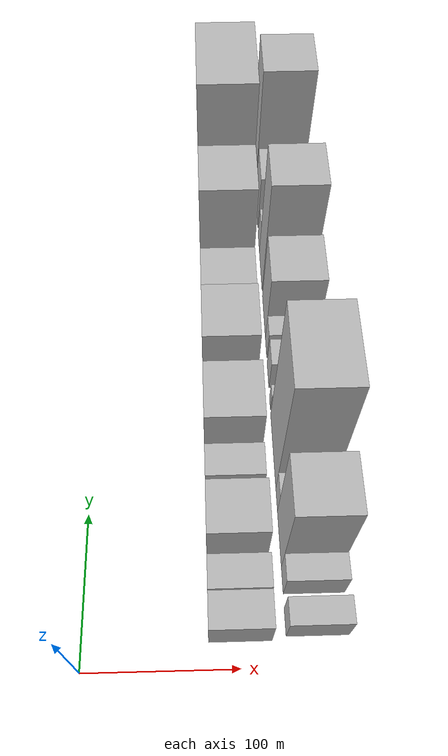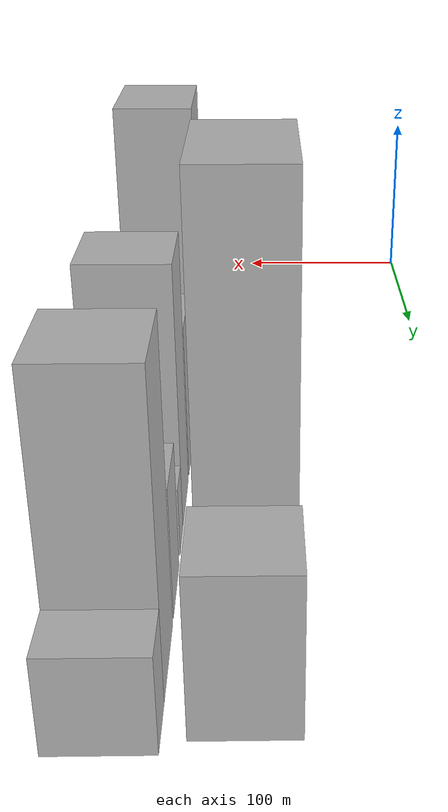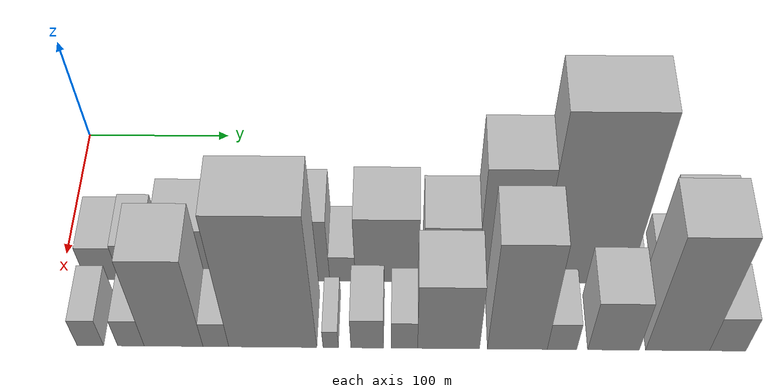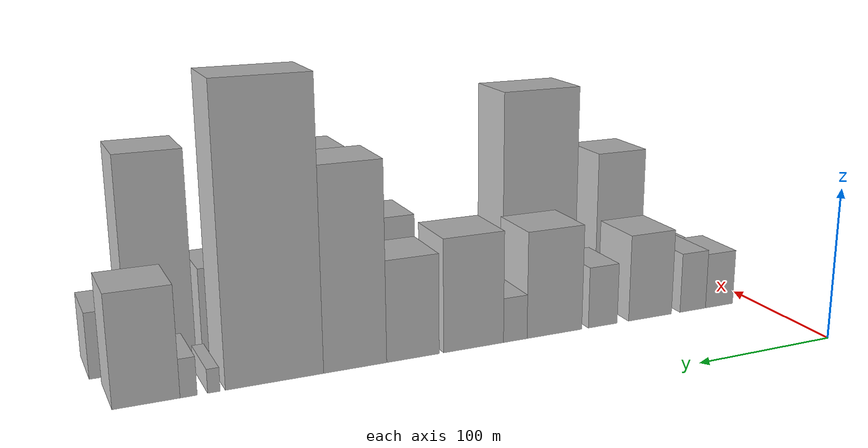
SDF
<sdf version="1.6">
 <world name="default">
  <model name="building_13">
   <static>1</static>
   <pose>100.0000 27.4380 0 0.000000 0.000000 0.000000</pose>
   <link name="link">
    <pose>0 0 19.50 0 0 0</pose>
    <collision name="collision"><geometry><box><size>40.0000 22.9066 39.0000</size></box></geometry></collision>
    <visual name="visual">
     <cast_shadows>0</cast_shadows>
     <geometry><box><size>40.0000 22.9066 39.0000</size></box></geometry>
     <material>
      <script>
       <uri>model://HANNAS_wall/materials/scripts</uri>
       <uri>model://HANNAS_wall/materials/textures</uri>
       <name>vrc/HANNAS_wall</name>
      </script>
     </material>
    </visual>
   </link>
  </model>
  <model name="building_14">
   <static>1</static>
   <pose>100.0000 49.4499 0 0.000000 0.000000 0.000000</pose>
   <link name="link">
    <pose>0 0 21.00 0 0 0</pose>
    <collision name="collision"><geometry><box><size>40.0000 21.1173 42.0000</size></box></geometry></collision>
    <visual name="visual">
     <cast_shadows>0</cast_shadows>
     <geometry><box><size>40.0000 21.1173 42.0000</size></box></geometry>
     <material>
      <script>
       <uri>model://HANNAS_wall/materials/scripts</uri>
       <uri>model://HANNAS_wall/materials/textures</uri>
       <name>vrc/HANNAS_wall</name>
      </script>
     </material>
    </visual>
   </link>
  </model>
  <model name="building_15">
   <static>1</static>
   <pose>100.0000 84.1552 0 0.000000 0.000000 0.000000</pose>
   <link name="link">
    <pose>0 0 30.00 0 0 0</pose>
    <collision name="collision"><geometry><box><size>40.0000 34.2933 60.0000</size></box></geometry></collision>
    <visual name="visual">
     <cast_shadows>0</cast_shadows>
     <geometry><box><size>40.0000 34.2933 60.0000</size></box></geometry>
     <material>
      <script>
       <uri>model://HANNAS_wall/materials/scripts</uri>
       <uri>model://HANNAS_wall/materials/textures</uri>
       <name>vrc/HANNAS_wall</name>
      </script>
     </material>
    </visual>
   </link>
  </model>
  <model name="building_16">
   <static>1</static>
   <pose>100.0000 121.4311 0 0.000000 0.000000 0.000000</pose>
   <link name="link">
    <pose>0 0 21.00 0 0 0</pose>
    <collision name="collision"><geometry><box><size>40.0000 22.2585 42.0000</size></box></geometry></collision>
    <visual name="visual">
     <cast_shadows>0</cast_shadows>
     <geometry><box><size>40.0000 22.2585 42.0000</size></box></geometry>
     <material>
      <script>
       <uri>model://HANNAS_wall/materials/scripts</uri>
       <uri>model://HANNAS_wall/materials/textures</uri>
       <name>vrc/HANNAS_wall</name>
      </script>
     </material>
    </visual>
   </link>
  </model>
  <model name="building_17">
   <static>1</static>
   <pose>100.0000 157.9445 0 0.000000 0.000000 0.000000</pose>
   <link name="link">
    <pose>0 0 36.00 0 0 0</pose>
    <collision name="collision"><geometry><box><size>40.0000 40.7683 72.0000</size></box></geometry></collision>
    <visual name="visual">
     <cast_shadows>0</cast_shadows>
     <geometry><box><size>40.0000 40.7683 72.0000</size></box></geometry>
     <material>
      <script>
       <uri>model://HANNAS_wall/materials/scripts</uri>
       <uri>model://HANNAS_wall/materials/textures</uri>
       <name>vrc/HANNAS_wall</name>
      </script>
     </material>
    </visual>
   </link>
  </model>
  <model name="building_18">
   <static>1</static>
   <pose>100.0000 186.8226 0 0.000000 0.000000 0.000000</pose>
   <link name="link">
    <pose>0 0 15.00 0 0 0</pose>
    <collision name="collision"><geometry><box><size>40.0000 16.9878 30.0000</size></box></geometry></collision>
    <visual name="visual">
     <cast_shadows>0</cast_shadows>
     <geometry><box><size>40.0000 16.9878 30.0000</size></box></geometry>
     <material>
      <script>
       <uri>model://HANNAS_wall/materials/scripts</uri>
       <uri>model://HANNAS_wall/materials/textures</uri>
       <name>vrc/HANNAS_wall</name>
      </script>
     </material>
    </visual>
   </link>
  </model>
  <model name="building_19">
   <static>1</static>
   <pose>100.0000 216.3093 0 0.000000 0.000000 0.000000</pose>
   <link name="link">
    <pose>0 0 37.50 0 0 0</pose>
    <collision name="collision"><geometry><box><size>40.0000 41.9856 75.0000</size></box></geometry></collision>
    <visual name="visual">
     <cast_shadows>0</cast_shadows>
     <geometry><box><size>40.0000 41.9856 75.0000</size></box></geometry>
     <material>
      <script>
       <uri>model://HANNAS_wall/materials/scripts</uri>
       <uri>model://HANNAS_wall/materials/textures</uri>
       <name>vrc/HANNAS_wall</name>
      </script>
     </material>
    </visual>
   </link>
  </model>
  <model name="building_20">
   <static>1</static>
   <pose>100.0000 257.9181 0 0.000000 0.000000 0.000000</pose>
   <link name="link">
    <pose>0 0 33.00 0 0 0</pose>
    <collision name="collision"><geometry><box><size>40.0000 35.2319 66.0000</size></box></geometry></collision>
    <visual name="visual">
     <cast_shadows>0</cast_shadows>
     <geometry><box><size>40.0000 35.2319 66.0000</size></box></geometry>
     <material>
      <script>
       <uri>model://HANNAS_wall/materials/scripts</uri>
       <uri>model://HANNAS_wall/materials/textures</uri>
       <name>vrc/HANNAS_wall</name>
      </script>
     </material>
    </visual>
   </link>
  </model>
  <model name="building_21">
   <static>1</static>
   <pose>100.0000 295.8284 0 0.000000 0.000000 0.000000</pose>
   <link name="link">
    <pose>0 0 64.50 0 0 0</pose>
    <collision name="collision"><geometry><box><size>40.0000 40.5886 129.0000</size></box></geometry></collision>
    <visual name="visual">
     <cast_shadows>0</cast_shadows>
     <geometry><box><size>40.0000 40.5886 129.0000</size></box></geometry>
     <material>
      <script>
       <uri>model://HANNAS_wall/materials/scripts</uri>
       <uri>model://HANNAS_wall/materials/textures</uri>
       <name>vrc/HANNAS_wall</name>
      </script>
     </material>
    </visual>
   </link>
  </model>
  <model name="building_22">
   <static>1</static>
   <pose>100.0000 346.0751 0 0.000000 0.000000 0.000000</pose>
   <link name="link">
    <pose>0 0 91.50 0 0 0</pose>
    <collision name="collision"><geometry><box><size>40.0000 59.9049 183.0000</size></box></geometry></collision>
    <visual name="visual">
     <cast_shadows>0</cast_shadows>
     <geometry><box><size>40.0000 59.9049 183.0000</size></box></geometry>
     <material>
      <script>
       <uri>model://HANNAS_wall/materials/scripts</uri>
       <uri>model://HANNAS_wall/materials/textures</uri>
       <name>vrc/HANNAS_wall</name>
      </script>
     </material>
    </visual>
   </link>
  </model>
  <model name="building_23">
   <static>1</static>
   <pose>100.0000 382.7169 0 0.000000 0.000000 0.000000</pose>
   <link name="link">
    <pose>0 0 7.50 0 0 0</pose>
    <collision name="collision"><geometry><box><size>40.0000 7.3787 15.0000</size></box></geometry></collision>
    <visual name="visual">
     <cast_shadows>0</cast_shadows>
     <geometry><box><size>40.0000 7.3787 15.0000</size></box></geometry>
     <material>
      <script>
       <uri>model://HANNAS_wall/materials/scripts</uri>
       <uri>model://HANNAS_wall/materials/textures</uri>
       <name>vrc/HANNAS_wall</name>
      </script>
     </material>
    </visual>
   </link>
  </model>
  <model name="building_24">
   <static>1</static>
   <pose>100.0000 397.3403 0 0.000000 0.000000 0.000000</pose>
   <link name="link">
    <pose>0 0 12.00 0 0 0</pose>
    <collision name="collision"><geometry><box><size>40.0000 9.8680 24.0000</size></box></geometry></collision>
    <visual name="visual">
     <cast_shadows>0</cast_shadows>
     <geometry><box><size>40.0000 9.8680 24.0000</size></box></geometry>
     <material>
      <script>
       <uri>model://HANNAS_wall/materials/scripts</uri>
       <uri>model://HANNAS_wall/materials/textures</uri>
       <name>vrc/HANNAS_wall</name>
      </script>
     </material>
    </visual>
   </link>
  </model>
  <model name="building_25">
   <static>1</static>
   <pose>100.0000 421.3536 0 0.000000 0.000000 0.000000</pose>
   <link name="link">
    <pose>0 0 34.50 0 0 0</pose>
    <collision name="collision"><geometry><box><size>40.0000 38.1586 69.0000</size></box></geometry></collision>
    <visual name="visual">
     <cast_shadows>0</cast_shadows>
     <geometry><box><size>40.0000 38.1586 69.0000</size></box></geometry>
     <material>
      <script>
       <uri>model://HANNAS_wall/materials/scripts</uri>
       <uri>model://HANNAS_wall/materials/textures</uri>
       <name>vrc/HANNAS_wall</name>
      </script>
     </material>
    </visual>
   </link>
  </model>
  <model name="building_38">
   <static>1</static>
   <pose>149.0000 26.8142 0 0.000000 0.000000 0.000000</pose>
   <link name="link">
    <pose>0 0 16.50 0 0 0</pose>
    <collision name="collision"><geometry><box><size>40.0000 17.0428 33.0000</size></box></geometry></collision>
    <visual name="visual">
     <cast_shadows>0</cast_shadows>
     <geometry><box><size>40.0000 17.0428 33.0000</size></box></geometry>
     <material>
      <script>
       <uri>model://HANNAS_wall/materials/scripts</uri>
       <uri>model://HANNAS_wall/materials/textures</uri>
       <name>vrc/HANNAS_wall</name>
      </script>
     </material>
    </visual>
   </link>
  </model>
  <model name="building_39">
   <static>1</static>
   <pose>149.0000 52.8453 0 0.000000 0.000000 0.000000</pose>
   <link name="link">
    <pose>0 0 16.50 0 0 0</pose>
    <collision name="collision"><geometry><box><size>40.0000 17.0194 33.0000</size></box></geometry></collision>
    <visual name="visual">
     <cast_shadows>0</cast_shadows>
     <geometry><box><size>40.0000 17.0194 33.0000</size></box></geometry>
     <material>
      <script>
       <uri>model://HANNAS_wall/materials/scripts</uri>
       <uri>model://HANNAS_wall/materials/textures</uri>
       <name>vrc/HANNAS_wall</name>
      </script>
     </material>
    </visual>
   </link>
  </model>
  <model name="building_40">
   <static>1</static>
   <pose>149.0000 80.2099 0 0.000000 0.000000 0.000000</pose>
   <link name="link">
    <pose>0 0 52.50 0 0 0</pose>
    <collision name="collision"><geometry><box><size>40.0000 37.7097 105.0000</size></box></geometry></collision>
    <visual name="visual">
     <cast_shadows>0</cast_shadows>
     <geometry><box><size>40.0000 37.7097 105.0000</size></box></geometry>
     <material>
      <script>
       <uri>model://HANNAS_wall/materials/scripts</uri>
       <uri>model://HANNAS_wall/materials/textures</uri>
       <name>vrc/HANNAS_wall</name>
      </script>
     </material>
    </visual>
   </link>
  </model>
  <model name="building_41">
   <static>1</static>
   <pose>149.0000 107.3474 0 0.000000 0.000000 0.000000</pose>
   <link name="link">
    <pose>0 0 15.00 0 0 0</pose>
    <collision name="collision"><geometry><box><size>40.0000 16.5652 30.0000</size></box></geometry></collision>
    <visual name="visual">
     <cast_shadows>0</cast_shadows>
     <geometry><box><size>40.0000 16.5652 30.0000</size></box></geometry>
     <material>
      <script>
       <uri>model://HANNAS_wall/materials/scripts</uri>
       <uri>model://HANNAS_wall/materials/textures</uri>
       <name>vrc/HANNAS_wall</name>
      </script>
     </material>
    </visual>
   </link>
  </model>
  <model name="building_42">
   <static>1</static>
   <pose>149.0000 143.8229 0 0.000000 0.000000 0.000000</pose>
   <link name="link">
    <pose>0 0 76.50 0 0 0</pose>
    <collision name="collision"><geometry><box><size>40.0000 56.3859 153.0000</size></box></geometry></collision>
    <visual name="visual">
     <cast_shadows>0</cast_shadows>
     <geometry><box><size>40.0000 56.3859 153.0000</size></box></geometry>
     <material>
      <script>
       <uri>model://HANNAS_wall/materials/scripts</uri>
       <uri>model://HANNAS_wall/materials/textures</uri>
       <name>vrc/HANNAS_wall</name>
      </script>
     </material>
    </visual>
   </link>
  </model>
  <model name="building_43">
   <static>1</static>
   <pose>149.0000 180.9305 0 0.000000 0.000000 0.000000</pose>
   <link name="link">
    <pose>0 0 10.50 0 0 0</pose>
    <collision name="collision"><geometry><box><size>40.0000 9.8292 21.0000</size></box></geometry></collision>
    <visual name="visual">
     <cast_shadows>0</cast_shadows>
     <geometry><box><size>40.0000 9.8292 21.0000</size></box></geometry>
     <material>
      <script>
       <uri>model://HANNAS_wall/materials/scripts</uri>
       <uri>model://HANNAS_wall/materials/textures</uri>
       <name>vrc/HANNAS_wall</name>
      </script>
     </material>
    </visual>
   </link>
  </model>
  <model name="building_44">
   <static>1</static>
   <pose>149.0000 204.2857 0 0.000000 0.000000 0.000000</pose>
   <link name="link">
    <pose>0 0 18.00 0 0 0</pose>
    <collision name="collision"><geometry><box><size>40.0000 20.8811 36.0000</size></box></geometry></collision>
    <visual name="visual">
     <cast_shadows>0</cast_shadows>
     <geometry><box><size>40.0000 20.8811 36.0000</size></box></geometry>
     <material>
      <script>
       <uri>model://HANNAS_wall/materials/scripts</uri>
       <uri>model://HANNAS_wall/materials/textures</uri>
       <name>vrc/HANNAS_wall</name>
      </script>
     </material>
    </visual>
   </link>
  </model>
  <model name="building_45">
   <static>1</static>
   <pose>149.0000 228.1001 0 0.000000 0.000000 0.000000</pose>
   <link name="link">
    <pose>0 0 16.50 0 0 0</pose>
    <collision name="collision"><geometry><box><size>40.0000 16.7478 33.0000</size></box></geometry></collision>
    <visual name="visual">
     <cast_shadows>0</cast_shadows>
     <geometry><box><size>40.0000 16.7478 33.0000</size></box></geometry>
     <material>
      <script>
       <uri>model://HANNAS_wall/materials/scripts</uri>
       <uri>model://HANNAS_wall/materials/textures</uri>
       <name>vrc/HANNAS_wall</name>
      </script>
     </material>
    </visual>
   </link>
  </model>
  <model name="building_46">
   <static>1</static>
   <pose>149.0000 256.2906 0 0.000000 0.000000 0.000000</pose>
   <link name="link">
    <pose>0 0 39.00 0 0 0</pose>
    <collision name="collision"><geometry><box><size>40.0000 39.6331 78.0000</size></box></geometry></collision>
    <visual name="visual">
     <cast_shadows>0</cast_shadows>
     <geometry><box><size>40.0000 39.6331 78.0000</size></box></geometry>
     <material>
      <script>
       <uri>model://HANNAS_wall/materials/scripts</uri>
       <uri>model://HANNAS_wall/materials/textures</uri>
       <name>vrc/HANNAS_wall</name>
      </script>
     </material>
    </visual>
   </link>
  </model>
  <model name="building_47">
   <static>1</static>
   <pose>149.0000 300.2630 0 0.000000 0.000000 0.000000</pose>
   <link name="link">
    <pose>0 0 63.00 0 0 0</pose>
    <collision name="collision"><geometry><box><size>40.0000 38.3118 126.0000</size></box></geometry></collision>
    <visual name="visual">
     <cast_shadows>0</cast_shadows>
     <geometry><box><size>40.0000 38.3118 126.0000</size></box></geometry>
     <material>
      <script>
       <uri>model://HANNAS_wall/materials/scripts</uri>
       <uri>model://HANNAS_wall/materials/textures</uri>
       <name>vrc/HANNAS_wall</name>
      </script>
     </material>
    </visual>
   </link>
  </model>
  <model name="building_48">
   <static>1</static>
   <pose>149.0000 328.8470 0 0.000000 0.000000 0.000000</pose>
   <link name="link">
    <pose>0 0 16.50 0 0 0</pose>
    <collision name="collision"><geometry><box><size>40.0000 18.8561 33.0000</size></box></geometry></collision>
    <visual name="visual">
     <cast_shadows>0</cast_shadows>
     <geometry><box><size>40.0000 18.8561 33.0000</size></box></geometry>
     <material>
      <script>
       <uri>model://HANNAS_wall/materials/scripts</uri>
       <uri>model://HANNAS_wall/materials/textures</uri>
       <name>vrc/HANNAS_wall</name>
      </script>
     </material>
    </visual>
   </link>
  </model>
  <model name="building_49">
   <static>1</static>
   <pose>149.0000 361.7642 0 0.000000 0.000000 0.000000</pose>
   <link name="link">
    <pose>0 0 30.00 0 0 0</pose>
    <collision name="collision"><geometry><box><size>40.0000 32.9784 60.0000</size></box></geometry></collision>
    <visual name="visual">
     <cast_shadows>0</cast_shadows>
     <geometry><box><size>40.0000 32.9784 60.0000</size></box></geometry>
     <material>
      <script>
       <uri>model://HANNAS_wall/materials/scripts</uri>
       <uri>model://HANNAS_wall/materials/textures</uri>
       <name>vrc/HANNAS_wall</name>
      </script>
     </material>
    </visual>
   </link>
  </model>
  <model name="building_50">
   <static>1</static>
   <pose>149.0000 402.6870 0 0.000000 0.000000 0.000000</pose>
   <link name="link">
    <pose>0 0 67.50 0 0 0</pose>
    <collision name="collision"><geometry><box><size>40.0000 40.8671 135.0000</size></box></geometry></collision>
    <visual name="visual">
     <cast_shadows>0</cast_shadows>
     <geometry><box><size>40.0000 40.8671 135.0000</size></box></geometry>
     <material>
      <script>
       <uri>model://HANNAS_wall/materials/scripts</uri>
       <uri>model://HANNAS_wall/materials/textures</uri>
       <name>vrc/HANNAS_wall</name>
      </script>
     </material>
    </visual>
   </link>
  </model>
  <model name="building_51">
   <static>1</static>
   <pose>149.0000 434.7063 0 0.000000 0.000000 0.000000</pose>
   <link name="link">
    <pose>0 0 21.00 0 0 0</pose>
    <collision name="collision"><geometry><box><size>40.0000 23.1716 42.0000</size></box></geometry></collision>
    <visual name="visual">
     <cast_shadows>0</cast_shadows>
     <geometry><box><size>40.0000 23.1716 42.0000</size></box></geometry>
     <material>
      <script>
       <uri>model://HANNAS_wall/materials/scripts</uri>
       <uri>model://HANNAS_wall/materials/textures</uri>
       <name>vrc/HANNAS_wall</name>
      </script>
     </material>
    </visual>
   </link>
  </model>
 </world>
</sdf>
